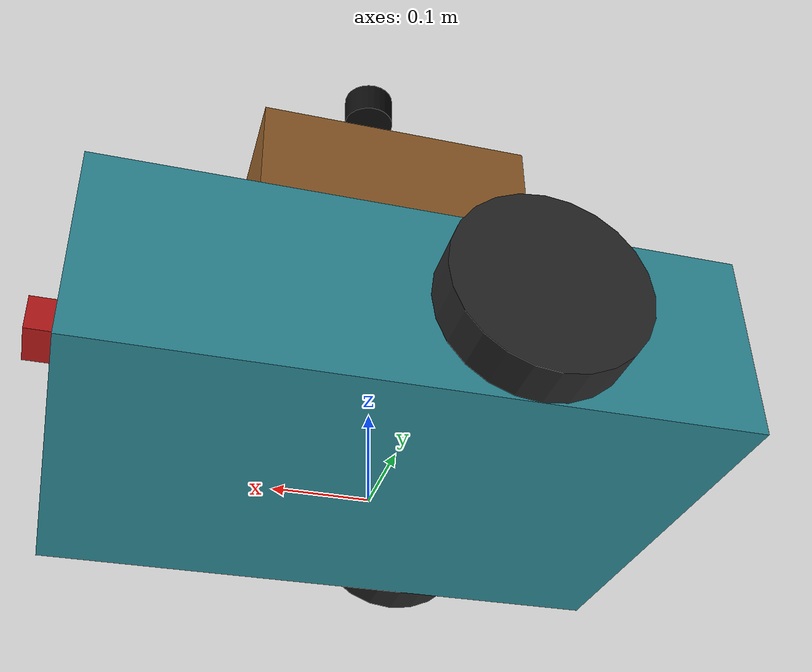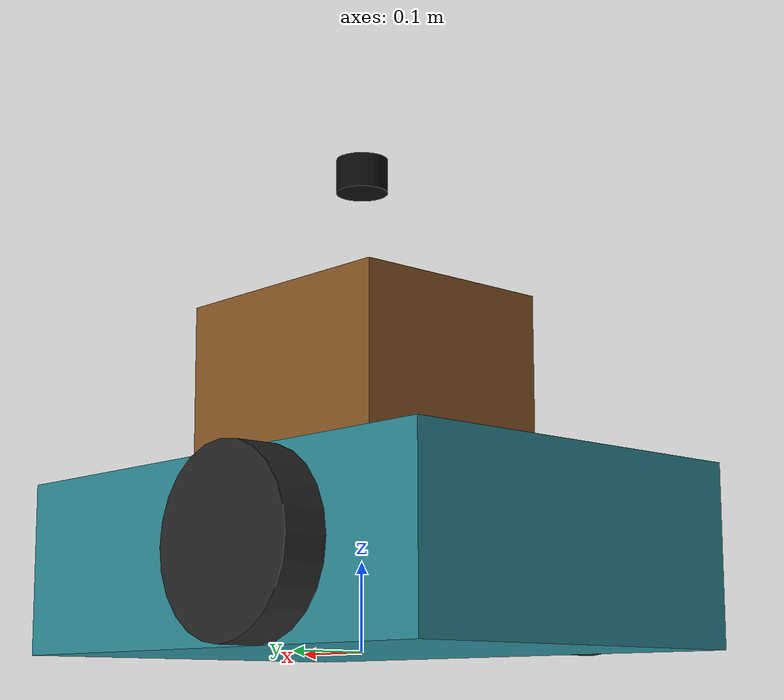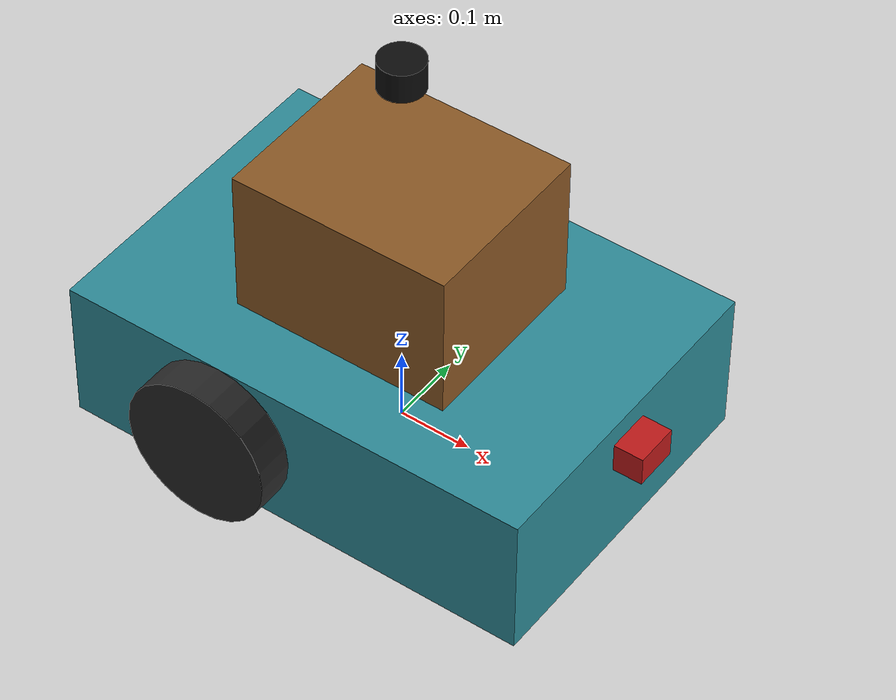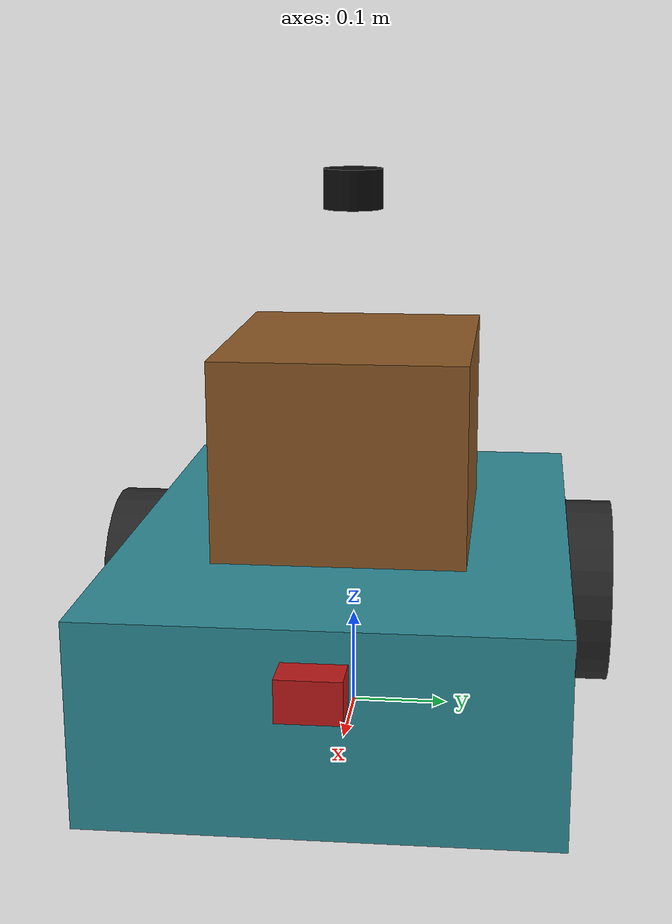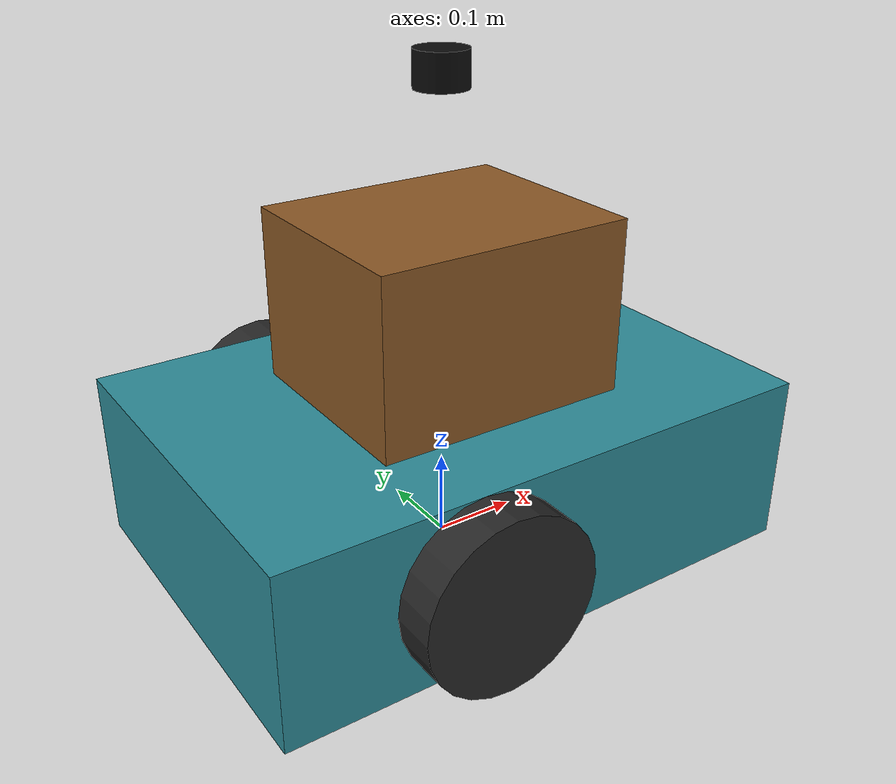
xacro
<?xml version="1.0"?>
<robot name="delivery_robot"
       xmlns:xacro="http://www.ros.org/wiki/xacro">

  <!--  PROPERTIES                                                   -->

  <!-- Base platform -->
  <xacro:property name="base_x"      value="0.65"/>
  <xacro:property name="base_y"      value="0.45"/>
  <xacro:property name="base_z"      value="0.20"/>
  <xacro:property name="base_mass"   value="58.50"/>

  <!-- Drive wheels -->
  <xacro:property name="wheel_radius" value="0.10"/>
  <xacro:property name="wheel_width"  value="0.05"/>
  <xacro:property name="wheel_mass"   value="1.5708"/>  <!-- ρπr²l -->

  <!-- Caster -->
  <xacro:property name="caster_radius" value="0.05"/>
  <xacro:property name="caster_mass"   value="0.5236"/>  <!-- ρ·(4/3)πr³ -->

  <!-- Cargo box -->
  <xacro:property name="cargo_x"    value="0.30"/>
  <xacro:property name="cargo_y"    value="0.25"/>
  <xacro:property name="cargo_z"    value="0.20"/>
  <xacro:property name="cargo_mass" value="15.0"/>

  <!-- Lidar -->
  <xacro:property name="lidar_radius" value="0.03"/>
  <xacro:property name="lidar_height" value="0.04"/>
  <xacro:property name="lidar_mass"   value="0.1131"/>
  <xacro:property name="lidar_z"      value="0.55"/>  <!-- above ground -->

  <!-- Camera -->
  <xacro:property name="camera_x"    value="0.04"/>
  <xacro:property name="camera_y"    value="0.06"/>
  <xacro:property name="camera_z"    value="0.04"/>
  <xacro:property name="camera_mass" value="0.096"/>

  <!-- Battery -->
  <xacro:property name="battery_x"    value="0.20"/>
  <xacro:property name="battery_y"    value="0.15"/>
  <xacro:property name="battery_z"    value="0.08"/>
  <xacro:property name="battery_mass" value="2.40"/>

  <!--  MACROS                                                       -->

  <!-- Inertia: solid box -->
  <xacro:macro name="box_inertia" params="m x y z">
    <inertia ixx="${(m/12.0)*(y*y + z*z)}" ixy="0" ixz="0"
             iyy="${(m/12.0)*(x*x + z*z)}" iyz="0"
             izz="${(m/12.0)*(x*x + y*y)}"/>
  </xacro:macro>

  <!-- Inertia: solid cylinder (axis along Y after rotation) -->
  <xacro:macro name="cylinder_inertia_y" params="m r l">
    <inertia ixx="${(m/12.0)*(3*r*r + l*l)}" ixy="0" ixz="0"
             iyy="${(m/2.0)*r*r}"            iyz="0"
             izz="${(m/12.0)*(3*r*r + l*l)}"/>
  </xacro:macro>

  <!-- Inertia: solid cylinder (axis along Z — default) -->
  <xacro:macro name="cylinder_inertia_z" params="m r l">
    <inertia ixx="${(m/12.0)*(3*r*r + l*l)}" ixy="0" ixz="0"
             iyy="${(m/12.0)*(3*r*r + l*l)}" iyz="0"
             izz="${(m/2.0)*r*r}"/>
  </xacro:macro>

  <!-- Inertia: solid sphere -->
  <xacro:macro name="sphere_inertia" params="m r">
    <inertia ixx="${(2.0/5.0)*m*r*r}" ixy="0" ixz="0"
             iyy="${(2.0/5.0)*m*r*r}" iyz="0"
             izz="${(2.0/5.0)*m*r*r}"/>
  </xacro:macro>

  <!-- Reusable drive-wheel macro -->
  <xacro:macro name="drive_wheel" params="name y_offset">
    <link name="${name}">
      <visual>
        <origin xyz="0 0 0" rpy="1.5708 0 0"/>
        <geometry>
          <cylinder radius="${wheel_radius}" length="${wheel_width}"/>
        </geometry>
        <material name="dark_grey">
          <color rgba="0.15 0.15 0.15 1.0"/>
        </material>
      </visual>
      <collision>
        <origin xyz="0 0 0" rpy="1.5708 0 0"/>
        <geometry>
          <cylinder radius="${wheel_radius}" length="${wheel_width}"/>
        </geometry>
      </collision>
      <inertial>
        <origin xyz="0 0 0" rpy="0 0 0"/>
        <mass value="${wheel_mass}"/>
        <xacro:cylinder_inertia_y m="${wheel_mass}" r="${wheel_radius}" l="${wheel_width}"/>
      </inertial>
    </link>

    <joint name="${name}_joint" type="continuous">
      <parent link="base_link"/>
      <child link="${name}"/>
      <!-- x = -0.10 (slightly behind centre for stability), y = offset, z = wheel_radius -->
      <origin xyz="-0.10 ${y_offset} ${wheel_radius}" rpy="0 0 0"/>
      <axis xyz="0 1 0"/>
    </joint>
  </xacro:macro>

  <!--  BASE LINK                                                    -->

  <link name="base_link">
    <visual>
      <origin xyz="0 0 ${wheel_radius}" rpy="0 0 0"/>
      <geometry>
        <box size="${base_x} ${base_y} ${base_z}"/>
      </geometry>
      <material name="teal">
        <color rgba="0.18 0.55 0.60 1.0"/>
      </material>
    </visual>

    <collision>
      <origin xyz="0 0 ${wheel_radius}" rpy="0 0 0"/>
      <geometry>
        <box size="${base_x} ${base_y} ${base_z}"/>
      </geometry>
    </collision>

    <inertial>
      <origin xyz="0 0 ${wheel_radius}" rpy="0 0 0"/>
      <mass value="${base_mass}"/>
      <xacro:box_inertia m="${base_mass}" x="${base_x}" y="${base_y}" z="${base_z}"/>
    </inertial>
  </link>

  <!--  DRIVE WHEELS  (continuous)                                   -->

  <!-- Inner face of wheel flush with base side -->
  <xacro:drive_wheel name="left_wheel"  y_offset="${ base_y/2 + wheel_width/2}"/>
  <xacro:drive_wheel name="right_wheel" y_offset="${-base_y/2 - wheel_width/2}"/>

  <!--  FRONT CASTER WHEEL  (continuous, free-spinning)              -->

  <link name="caster_wheel">
    <visual>
      <origin xyz="0 0 0" rpy="0 0 0"/>
      <geometry>
        <sphere radius="${caster_radius}"/>
      </geometry>
      <material name="grey">
        <color rgba="0.4 0.4 0.4 1.0"/>
      </material>
    </visual>

    <collision>
      <origin xyz="0 0 0" rpy="0 0 0"/>
      <geometry>
        <sphere radius="${caster_radius}"/>
      </geometry>
    </collision>

    <inertial>
      <origin xyz="0 0 0" rpy="0 0 0"/>
      <mass value="${caster_mass}"/>
      <xacro:sphere_inertia m="${caster_mass}" r="${caster_radius}"/>
    </inertial>
  </link>

  <joint name="caster_joint" type="continuous">
    <parent link="base_link"/>
    <child link="caster_wheel"/>
    <!-- Front of base, ground-touching: z = caster_radius -->
    <origin xyz="${base_x/2 - caster_radius} 0 ${caster_radius}" rpy="0 0 0"/>
    <axis xyz="0 1 0"/>
  </joint>

  <!--  CARGO BOX  (fixed, on top of base)                           -->

  <link name="cargo_link">
    <visual>
      <origin xyz="0 0 ${cargo_z/2}" rpy="0 0 0"/>
      <geometry>
        <box size="${cargo_x} ${cargo_y} ${cargo_z}"/>
      </geometry>
      <material name="brown">
        <color rgba="0.55 0.35 0.15 1.0"/>
      </material>
    </visual>

    <collision>
      <origin xyz="0 0 ${cargo_z/2}" rpy="0 0 0"/>
      <geometry>
        <box size="${cargo_x} ${cargo_y} ${cargo_z}"/>
      </geometry>
    </collision>

    <inertial>
      <origin xyz="0 0 ${cargo_z/2}" rpy="0 0 0"/>
      <mass value="${cargo_mass}"/>
      <xacro:box_inertia m="${cargo_mass}" x="${cargo_x}" y="${cargo_y}" z="${cargo_z}"/>
    </inertial>
  </link>

  <joint name="cargo_joint" type="fixed">
    <parent link="base_link"/>
    <child link="cargo_link"/>
    <!-- Sits on top of the base platform -->
    <origin xyz="0 0 ${wheel_radius + base_z/2}" rpy="0 0 0"/>
  </joint>

  <!--  LIDAR  (fixed, 0.55 m above ground)                         -->

  <link name="lidar_link">
    <visual>
      <origin xyz="0 0 0" rpy="0 0 0"/>
      <geometry>
        <cylinder radius="${lidar_radius}" length="${lidar_height}"/>
      </geometry>
      <material name="black">
        <color rgba="0.05 0.05 0.05 1.0"/>
      </material>
    </visual>

    <collision>
      <origin xyz="0 0 0" rpy="0 0 0"/>
      <geometry>
        <cylinder radius="${lidar_radius}" length="${lidar_height}"/>
      </geometry>
    </collision>

    <inertial>
      <origin xyz="0 0 0" rpy="0 0 0"/>
      <mass value="${lidar_mass}"/>
      <xacro:cylinder_inertia_z m="${lidar_mass}" r="${lidar_radius}" l="${lidar_height}"/>
    </inertial>
  </link>

  <joint name="lidar_joint" type="fixed">
    <parent link="base_link"/>
    <child link="lidar_link"/>
    <!-- 0.55 m above ground -->
    <origin xyz="0 0 ${lidar_z}" rpy="0 0 0"/>
  </joint>

  <!--  CAMERA  (fixed, front face of base)                          -->

  <link name="camera_link">
    <visual>
      <origin xyz="0 0 0" rpy="0 0 0"/>
      <geometry>
        <box size="${camera_x} ${camera_y} ${camera_z}"/>
      </geometry>
      <material name="red">
        <color rgba="0.75 0.10 0.10 1.0"/>
      </material>
    </visual>

    <collision>
      <origin xyz="0 0 0" rpy="0 0 0"/>
      <geometry>
        <box size="${camera_x} ${camera_y} ${camera_z}"/>
      </geometry>
    </collision>

    <inertial>
      <origin xyz="0 0 0" rpy="0 0 0"/>
      <mass value="${camera_mass}"/>
      <xacro:box_inertia m="${camera_mass}" x="${camera_x}" y="${camera_y}" z="${camera_z}"/>
    </inertial>
  </link>

  <joint name="camera_joint" type="fixed">
    <parent link="base_link"/>
    <child link="camera_link"/>
    <!-- Mounted on the front face, upper half of the base -->
    <origin xyz="${base_x/2 + camera_x/2} 0 ${wheel_radius + base_z*0.25}" rpy="0 0 0"/>
  </joint>

  <!--  BATTERY  (fixed, centred inside the base)                    -->

  <link name="battery_link">
    <visual>
      <origin xyz="0 0 0" rpy="0 0 0"/>
      <geometry>
        <box size="${battery_x} ${battery_y} ${battery_z}"/>
      </geometry>
      <material name="green">
        <color rgba="0.20 0.65 0.20 1.0"/>
      </material>
    </visual>

    <collision>
      <origin xyz="0 0 0" rpy="0 0 0"/>
      <geometry>
        <box size="${battery_x} ${battery_y} ${battery_z}"/>
      </geometry>
    </collision>

    <inertial>
      <origin xyz="0 0 0" rpy="0 0 0"/>
      <mass value="${battery_mass}"/>
      <xacro:box_inertia m="${battery_mass}" x="${battery_x}" y="${battery_y}" z="${battery_z}"/>
    </inertial>
  </link>

  <joint name="battery_joint" type="fixed">
    <parent link="base_link"/>
    <child link="battery_link"/>
    <!-- Centred inside the base platform -->
    <origin xyz="0 0 ${wheel_radius}" rpy="0 0 0"/>
  </joint>

</robot>
